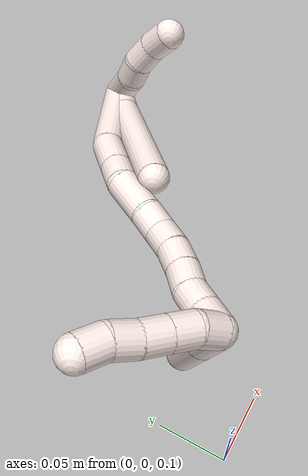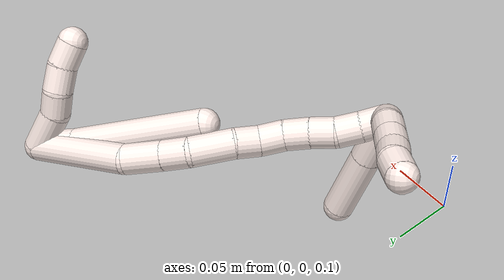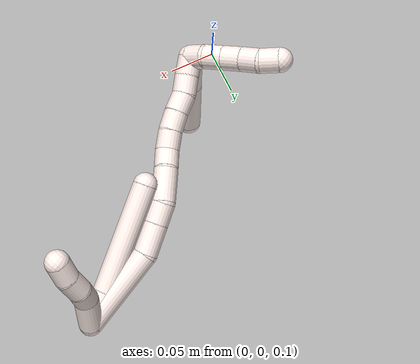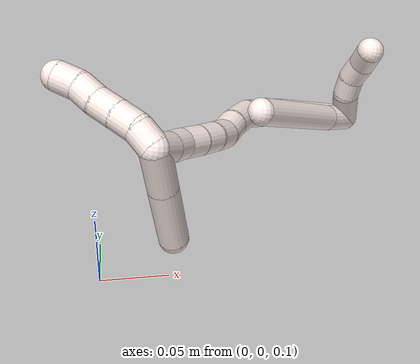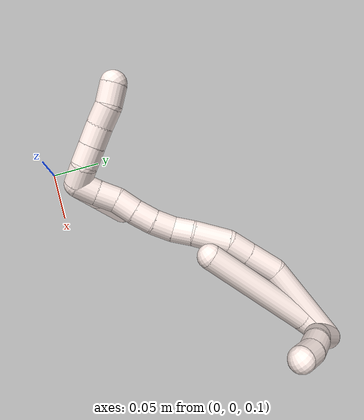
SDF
<sdf version="1.7">
 <world name="default">
  <model name="11">
   <static>0</static>
   <link name="11">
    <collision name="collision-cylinder-e_1_2_8">
     <pose>0.002844 -0.003409 -0.01672 2.94044 0.165153 1.37381</pose>
     <geometry><cylinder><radius>0.0125</radius><length>0.034599</length></cylinder></geometry>
     <surface>
      <friction><ode><mu>1.16</mu><mu2>1.16</mu2><slip1>0</slip1><slip2>0</slip2></ode></friction>
      <contact><ode><kp>1e+06</kp><kd>1</kd><max_vel>0</max_vel><min_depth>0.001</min_depth></ode></contact>
     </surface>
    </collision>
    <visual name="visual-cylinder-e_1_2_8">
     <pose>0.002844 -0.003409 -0.01672 2.94044 0.165153 1.37381</pose>
     <geometry><cylinder><radius>0.0125</radius><length>0.034599</length></cylinder></geometry>
     <material><ambient>1 0.933333 0.909804 1</ambient></material>
    </visual>
    <collision name="collision-cylinder-e_2_8_6">
     <pose>0.013432 -0.022802 -0.088339 2.85829 0.134613 0.883128</pose>
     <geometry><cylinder><radius>0.0125</radius><length>0.115401</length></cylinder></geometry>
     <surface>
      <friction><ode><mu>1.16</mu><mu2>1.16</mu2><slip1>0</slip1><slip2>0</slip2></ode></friction>
      <contact><ode><kp>1e+06</kp><kd>1</kd><max_vel>0</max_vel><min_depth>0.001</min_depth></ode></contact>
     </surface>
    </collision>
    <visual name="visual-cylinder-e_2_8_6">
     <pose>0.013432 -0.022802 -0.088339 2.85829 0.134613 0.883128</pose>
     <geometry><cylinder><radius>0.0125</radius><length>0.115401</length></cylinder></geometry>
     <material><ambient>1 0.933333 0.909804 1</ambient></material>
    </visual>
    <collision name="collision-cylinder-e_1_2_9">
     <pose>-0.00537 -0.0146 -0.010033 2.17287 -0.294315 -0.549196</pose>
     <geometry><cylinder><radius>0.0125</radius><length>0.037021</length></cylinder></geometry>
     <surface>
      <friction><ode><mu>1.16</mu><mu2>1.16</mu2><slip1>0</slip1><slip2>0</slip2></ode></friction>
      <contact><ode><kp>1e+06</kp><kd>1</kd><max_vel>0</max_vel><min_depth>0.001</min_depth></ode></contact>
     </surface>
    </collision>
    <visual name="visual-cylinder-e_1_2_9">
     <pose>-0.00537 -0.0146 -0.010033 2.17287 -0.294315 -0.549196</pose>
     <geometry><cylinder><radius>0.0125</radius><length>0.037021</length></cylinder></geometry>
     <material><ambient>1 0.933333 0.909804 1</ambient></material>
    </visual>
    <collision name="collision-cylinder-e_2_9_10">
     <pose>-0.014894 -0.038023 -0.02275 1.86616 -0.423246 -0.564386</pose>
     <geometry><cylinder><radius>0.0125</radius><length>0.020231</length></cylinder></geometry>
     <surface>
      <friction><ode><mu>1.16</mu><mu2>1.16</mu2><slip1>0</slip1><slip2>0</slip2></ode></friction>
      <contact><ode><kp>1e+06</kp><kd>1</kd><max_vel>0</max_vel><min_depth>0.001</min_depth></ode></contact>
     </surface>
    </collision>
    <visual name="visual-cylinder-e_2_9_10">
     <pose>-0.014894 -0.038023 -0.02275 1.86616 -0.423246 -0.564386</pose>
     <geometry><cylinder><radius>0.0125</radius><length>0.020231</length></cylinder></geometry>
     <material><ambient>1 0.933333 0.909804 1</ambient></material>
    </visual>
    <collision name="collision-cylinder-e_3_10_11">
     <pose>-0.020852 -0.057314 -0.02731 1.74805 -0.168008 -0.200577</pose>
     <geometry><cylinder><radius>0.0125</radius><length>0.021574</length></cylinder></geometry>
     <surface>
      <friction><ode><mu>1.16</mu><mu2>1.16</mu2><slip1>0</slip1><slip2>0</slip2></ode></friction>
      <contact><ode><kp>1e+06</kp><kd>1</kd><max_vel>0</max_vel><min_depth>0.001</min_depth></ode></contact>
     </surface>
    </collision>
    <visual name="visual-cylinder-e_3_10_11">
     <pose>-0.020852 -0.057314 -0.02731 1.74805 -0.168008 -0.200577</pose>
     <geometry><cylinder><radius>0.0125</radius><length>0.021574</length></cylinder></geometry>
     <material><ambient>1 0.933333 0.909804 1</ambient></material>
    </visual>
    <collision name="collision-cylinder-e_4_11_5">
     <pose>-0.023312 -0.077623 -0.033037 1.94392 -0.061989 -0.090803</pose>
     <geometry><cylinder><radius>0.0125</radius><length>0.021175</length></cylinder></geometry>
     <surface>
      <friction><ode><mu>1.16</mu><mu2>1.16</mu2><slip1>0</slip1><slip2>0</slip2></ode></friction>
      <contact><ode><kp>1e+06</kp><kd>1</kd><max_vel>0</max_vel><min_depth>0.001</min_depth></ode></contact>
     </surface>
    </collision>
    <visual name="visual-cylinder-e_4_11_5">
     <pose>-0.023312 -0.077623 -0.033037 1.94392 -0.061989 -0.090803</pose>
     <geometry><cylinder><radius>0.0125</radius><length>0.021175</length></cylinder></geometry>
     <material><ambient>1 0.933333 0.909804 1</ambient></material>
    </visual>
    <collision name="collision-cylinder-e_1_2_12">
     <pose>-0.000251 -0.00055 -0.044167 3.12914 -0.005676 -0.855438</pose>
     <geometry><cylinder><radius>0.0125</radius><length>0.088342</length></cylinder></geometry>
     <surface>
      <friction><ode><mu>1.16</mu><mu2>1.16</mu2><slip1>0</slip1><slip2>0</slip2></ode></friction>
      <contact><ode><kp>1e+06</kp><kd>1</kd><max_vel>0</max_vel><min_depth>0.001</min_depth></ode></contact>
     </surface>
    </collision>
    <visual name="visual-cylinder-e_1_2_12">
     <pose>-0.000251 -0.00055 -0.044167 3.12914 -0.005676 -0.855438</pose>
     <geometry><cylinder><radius>0.0125</radius><length>0.088342</length></cylinder></geometry>
     <material><ambient>1 0.933333 0.909804 1</ambient></material>
    </visual>
    <collision name="collision-cylinder-e_2_12_13">
     <pose>0.003213 -0.005025 -0.103614 2.89015 0.231198 1.48614</pose>
     <geometry><cylinder><radius>0.0125</radius><length>0.032416</length></cylinder></geometry>
     <surface>
      <friction><ode><mu>1.16</mu><mu2>1.16</mu2><slip1>0</slip1><slip2>0</slip2></ode></friction>
      <contact><ode><kp>1e+06</kp><kd>1</kd><max_vel>0</max_vel><min_depth>0.001</min_depth></ode></contact>
     </surface>
    </collision>
    <visual name="visual-cylinder-e_2_12_13">
     <pose>0.003213 -0.005025 -0.103614 2.89015 0.231198 1.48614</pose>
     <geometry><cylinder><radius>0.0125</radius><length>0.032416</length></cylinder></geometry>
     <material><ambient>1 0.933333 0.909804 1</ambient></material>
    </visual>
    <collision name="collision-cylinder-e_3_13_14">
     <pose>0.009114 -0.01195 -0.129473 2.86523 0.196369 1.23255</pose>
     <geometry><cylinder><radius>0.0125</radius><length>0.02242</length></cylinder></geometry>
     <surface>
      <friction><ode><mu>1.16</mu><mu2>1.16</mu2><slip1>0</slip1><slip2>0</slip2></ode></friction>
      <contact><ode><kp>1e+06</kp><kd>1</kd><max_vel>0</max_vel><min_depth>0.001</min_depth></ode></contact>
     </surface>
    </collision>
    <visual name="visual-cylinder-e_3_13_14">
     <pose>0.009114 -0.01195 -0.129473 2.86523 0.196369 1.23255</pose>
     <geometry><cylinder><radius>0.0125</radius><length>0.02242</length></cylinder></geometry>
     <material><ambient>1 0.933333 0.909804 1</ambient></material>
    </visual>
    <collision name="collision-cylinder-e_4_14_15">
     <pose>0.019887 -0.020971 -0.154447 2.7455 0.50303 1.81553</pose>
     <geometry><cylinder><radius>0.0125</radius><length>0.035622</length></cylinder></geometry>
     <surface>
      <friction><ode><mu>1.16</mu><mu2>1.16</mu2><slip1>0</slip1><slip2>0</slip2></ode></friction>
      <contact><ode><kp>1e+06</kp><kd>1</kd><max_vel>0</max_vel><min_depth>0.001</min_depth></ode></contact>
     </surface>
    </collision>
    <visual name="visual-cylinder-e_4_14_15">
     <pose>0.019887 -0.020971 -0.154447 2.7455 0.50303 1.81553</pose>
     <geometry><cylinder><radius>0.0125</radius><length>0.035622</length></cylinder></geometry>
     <material><ambient>1 0.933333 0.909804 1</ambient></material>
    </visual>
    <collision name="collision-cylinder-e_5_15_16">
     <pose>0.034616 -0.029448 -0.176355 2.82549 0.660609 2.27133</pose>
     <geometry><cylinder><radius>0.0125</radius><length>0.02002</length></cylinder></geometry>
     <surface>
      <friction><ode><mu>1.16</mu><mu2>1.16</mu2><slip1>0</slip1><slip2>0</slip2></ode></friction>
      <contact><ode><kp>1e+06</kp><kd>1</kd><max_vel>0</max_vel><min_depth>0.001</min_depth></ode></contact>
     </surface>
    </collision>
    <visual name="visual-cylinder-e_5_15_16">
     <pose>0.034616 -0.029448 -0.176355 2.82549 0.660609 2.27133</pose>
     <geometry><cylinder><radius>0.0125</radius><length>0.02002</length></cylinder></geometry>
     <material><ambient>1 0.933333 0.909804 1</ambient></material>
    </visual>
    <collision name="collision-cylinder-e_6_16_17">
     <pose>0.044231 -0.035678 -0.192861 2.74438 0.342135 1.41866</pose>
     <geometry><cylinder><radius>0.0125</radius><length>0.020705</length></cylinder></geometry>
     <surface>
      <friction><ode><mu>1.16</mu><mu2>1.16</mu2><slip1>0</slip1><slip2>0</slip2></ode></friction>
      <contact><ode><kp>1e+06</kp><kd>1</kd><max_vel>0</max_vel><min_depth>0.001</min_depth></ode></contact>
     </surface>
    </collision>
    <visual name="visual-cylinder-e_6_16_17">
     <pose>0.044231 -0.035678 -0.192861 2.74438 0.342135 1.41866</pose>
     <geometry><cylinder><radius>0.0125</radius><length>0.020705</length></cylinder></geometry>
     <material><ambient>1 0.933333 0.909804 1</ambient></material>
    </visual>
    <collision name="collision-cylinder-e_7_17_18">
     <pose>0.050685 -0.041835 -0.211307 2.89456 0.296787 1.7555</pose>
     <geometry><cylinder><radius>0.0125</radius><length>0.02039</length></cylinder></geometry>
     <surface>
      <friction><ode><mu>1.16</mu><mu2>1.16</mu2><slip1>0</slip1><slip2>0</slip2></ode></friction>
      <contact><ode><kp>1e+06</kp><kd>1</kd><max_vel>0</max_vel><min_depth>0.001</min_depth></ode></contact>
     </surface>
    </collision>
    <visual name="visual-cylinder-e_7_17_18">
     <pose>0.050685 -0.041835 -0.211307 2.89456 0.296787 1.7555</pose>
     <geometry><cylinder><radius>0.0125</radius><length>0.02039</length></cylinder></geometry>
     <material><ambient>1 0.933333 0.909804 1</ambient></material>
    </visual>
    <collision name="collision-cylinder-e_8_18_19">
     <pose>0.056126 -0.045807 -0.23034 2.97727 0.248074 1.97419</pose>
     <geometry><cylinder><radius>0.0125</radius><length>0.020035</length></cylinder></geometry>
     <surface>
      <friction><ode><mu>1.16</mu><mu2>1.16</mu2><slip1>0</slip1><slip2>0</slip2></ode></friction>
      <contact><ode><kp>1e+06</kp><kd>1</kd><max_vel>0</max_vel><min_depth>0.001</min_depth></ode></contact>
     </surface>
    </collision>
    <visual name="visual-cylinder-e_8_18_19">
     <pose>0.056126 -0.045807 -0.23034 2.97727 0.248074 1.97419</pose>
     <geometry><cylinder><radius>0.0125</radius><length>0.020035</length></cylinder></geometry>
     <material><ambient>1 0.933333 0.909804 1</ambient></material>
    </visual>
    <collision name="collision-cylinder-e_9_19_20">
     <pose>0.062068 -0.051075 -0.248558 2.73889 0.355133 1.4424</pose>
     <geometry><cylinder><radius>0.0125</radius><length>0.020027</length></cylinder></geometry>
     <surface>
      <friction><ode><mu>1.16</mu><mu2>1.16</mu2><slip1>0</slip1><slip2>0</slip2></ode></friction>
      <contact><ode><kp>1e+06</kp><kd>1</kd><max_vel>0</max_vel><min_depth>0.001</min_depth></ode></contact>
     </surface>
    </collision>
    <visual name="visual-cylinder-e_9_19_20">
     <pose>0.062068 -0.051075 -0.248558 2.73889 0.355133 1.4424</pose>
     <geometry><cylinder><radius>0.0125</radius><length>0.020027</length></cylinder></geometry>
     <material><ambient>1 0.933333 0.909804 1</ambient></material>
    </visual>
    <collision name="collision-cylinder-e_10_20_1">
     <pose>0.067898 -0.058779 -0.266057 2.71534 0.236792 1.00516</pose>
     <geometry><cylinder><radius>0.0125</radius><length>0.020024</length></cylinder></geometry>
     <surface>
      <friction><ode><mu>1.16</mu><mu2>1.16</mu2><slip1>0</slip1><slip2>0</slip2></ode></friction>
      <contact><ode><kp>1e+06</kp><kd>1</kd><max_vel>0</max_vel><min_depth>0.001</min_depth></ode></contact>
     </surface>
    </collision>
    <visual name="visual-cylinder-e_10_20_1">
     <pose>0.067898 -0.058779 -0.266057 2.71534 0.236792 1.00516</pose>
     <geometry><cylinder><radius>0.0125</radius><length>0.020024</length></cylinder></geometry>
     <material><ambient>1 0.933333 0.909804 1</ambient></material>
    </visual>
    <collision name="collision-cylinder-e_1_1_21">
     <pose>0.079794 -0.04748 -0.264866 -0.990184 0.480271 -0.262898</pose>
     <geometry><cylinder><radius>0.0125</radius><length>0.041328</length></cylinder></geometry>
     <surface>
      <friction><ode><mu>1.16</mu><mu2>1.16</mu2><slip1>0</slip1><slip2>0</slip2></ode></friction>
      <contact><ode><kp>1e+06</kp><kd>1</kd><max_vel>0</max_vel><min_depth>0.001</min_depth></ode></contact>
     </surface>
    </collision>
    <visual name="visual-cylinder-e_1_1_21">
     <pose>0.079794 -0.04748 -0.264866 -0.990184 0.480271 -0.262898</pose>
     <geometry><cylinder><radius>0.0125</radius><length>0.041328</length></cylinder></geometry>
     <material><ambient>1 0.933333 0.909804 1</ambient></material>
    </visual>
    <collision name="collision-cylinder-e_2_21_4">
     <pose>0.102827 -0.010429 -0.240438 -0.986279 0.477637 -0.260211</pose>
     <geometry><cylinder><radius>0.0125</radius><length>0.058672</length></cylinder></geometry>
     <surface>
      <friction><ode><mu>1.16</mu><mu2>1.16</mu2><slip1>0</slip1><slip2>0</slip2></ode></friction>
      <contact><ode><kp>1e+06</kp><kd>1</kd><max_vel>0</max_vel><min_depth>0.001</min_depth></ode></contact>
     </surface>
    </collision>
    <visual name="visual-cylinder-e_2_21_4">
     <pose>0.102827 -0.010429 -0.240438 -0.986279 0.477637 -0.260211</pose>
     <geometry><cylinder><radius>0.0125</radius><length>0.058672</length></cylinder></geometry>
     <material><ambient>1 0.933333 0.909804 1</ambient></material>
    </visual>
    <collision name="collision-cylinder-e_1_1_22">
     <pose>0.06137 -0.060919 -0.279119 -2.72007 -1.09238 2.46479</pose>
     <geometry><cylinder><radius>0.0125</radius><length>0.02</length></cylinder></geometry>
     <surface>
      <friction><ode><mu>1.16</mu><mu2>1.16</mu2><slip1>0</slip1><slip2>0</slip2></ode></friction>
      <contact><ode><kp>1e+06</kp><kd>1</kd><max_vel>0</max_vel><min_depth>0.001</min_depth></ode></contact>
     </surface>
    </collision>
    <visual name="visual-cylinder-e_1_1_22">
     <pose>0.06137 -0.060919 -0.279119 -2.72007 -1.09238 2.46479</pose>
     <geometry><cylinder><radius>0.0125</radius><length>0.02</length></cylinder></geometry>
     <material><ambient>1 0.933333 0.909804 1</ambient></material>
    </visual>
    <collision name="collision-cylinder-e_2_22_23">
     <pose>0.044982 -0.054402 -0.288024 -2.36373 -0.8497 1.66952</pose>
     <geometry><cylinder><radius>0.0125</radius><length>0.02</length></cylinder></geometry>
     <surface>
      <friction><ode><mu>1.16</mu><mu2>1.16</mu2><slip1>0</slip1><slip2>0</slip2></ode></friction>
      <contact><ode><kp>1e+06</kp><kd>1</kd><max_vel>0</max_vel><min_depth>0.001</min_depth></ode></contact>
     </surface>
    </collision>
    <visual name="visual-cylinder-e_2_22_23">
     <pose>0.044982 -0.054402 -0.288024 -2.36373 -0.8497 1.66952</pose>
     <geometry><cylinder><radius>0.0125</radius><length>0.02</length></cylinder></geometry>
     <material><ambient>1 0.933333 0.909804 1</ambient></material>
    </visual>
    <collision name="collision-cylinder-e_3_23_24">
     <pose>0.030008 -0.04512 -0.29749 -2.36821 -0.842454 1.66625</pose>
     <geometry><cylinder><radius>0.0125</radius><length>0.02</length></cylinder></geometry>
     <surface>
      <friction><ode><mu>1.16</mu><mu2>1.16</mu2><slip1>0</slip1><slip2>0</slip2></ode></friction>
      <contact><ode><kp>1e+06</kp><kd>1</kd><max_vel>0</max_vel><min_depth>0.001</min_depth></ode></contact>
     </surface>
    </collision>
    <visual name="visual-cylinder-e_3_23_24">
     <pose>0.030008 -0.04512 -0.29749 -2.36821 -0.842454 1.66625</pose>
     <geometry><cylinder><radius>0.0125</radius><length>0.02</length></cylinder></geometry>
     <material><ambient>1 0.933333 0.909804 1</ambient></material>
    </visual>
    <collision name="collision-cylinder-e_4_24_25">
     <pose>0.014311 -0.036566 -0.306371 -2.38299 -0.967445 1.84345</pose>
     <geometry><cylinder><radius>0.0125</radius><length>0.02</length></cylinder></geometry>
     <surface>
      <friction><ode><mu>1.16</mu><mu2>1.16</mu2><slip1>0</slip1><slip2>0</slip2></ode></friction>
      <contact><ode><kp>1e+06</kp><kd>1</kd><max_vel>0</max_vel><min_depth>0.001</min_depth></ode></contact>
     </surface>
    </collision>
    <visual name="visual-cylinder-e_4_24_25">
     <pose>0.014311 -0.036566 -0.306371 -2.38299 -0.967445 1.84345</pose>
     <geometry><cylinder><radius>0.0125</radius><length>0.02</length></cylinder></geometry>
     <material><ambient>1 0.933333 0.909804 1</ambient></material>
    </visual>
    <collision name="collision-cylinder-e_5_25_3">
     <pose>-0.000186 -0.027773 -0.316561 -2.46355 -0.676776 1.56878</pose>
     <geometry><cylinder><radius>0.0125</radius><length>0.02</length></cylinder></geometry>
     <surface>
      <friction><ode><mu>1.16</mu><mu2>1.16</mu2><slip1>0</slip1><slip2>0</slip2></ode></friction>
      <contact><ode><kp>1e+06</kp><kd>1</kd><max_vel>0</max_vel><min_depth>0.001</min_depth></ode></contact>
     </surface>
    </collision>
    <visual name="visual-cylinder-e_5_25_3">
     <pose>-0.000186 -0.027773 -0.316561 -2.46355 -0.676776 1.56878</pose>
     <geometry><cylinder><radius>0.0125</radius><length>0.02</length></cylinder></geometry>
     <material><ambient>1 0.933333 0.909804 1</ambient></material>
    </visual>
    <collision name="collision-sphere-3">
     <pose>-0.006449 -0.022883 -0.322632 0 -0 0</pose>
     <geometry><sphere><radius>0.0125</radius></sphere></geometry>
     <surface>
      <friction><ode><mu>1.16</mu><mu2>1.16</mu2><slip1>0</slip1><slip2>0</slip2></ode></friction>
      <contact><ode><kp>1e+06</kp><kd>1</kd><max_vel>0</max_vel><min_depth>0.001</min_depth></ode></contact>
     </surface>
    </collision>
    <visual name="visual-sphere-3">
     <pose>-0.006449 -0.022883 -0.322632 0 -0 0</pose>
     <geometry><sphere><radius>0.0125</radius></sphere></geometry>
     <material><ambient>1 0.933333 0.909804 1</ambient></material>
    </visual>
    <collision name="collision-sphere-25">
     <pose>0.006077 -0.032663 -0.310489 0 -0 0</pose>
     <geometry><sphere><radius>0.0125</radius></sphere></geometry>
     <surface>
      <friction><ode><mu>1.16</mu><mu2>1.16</mu2><slip1>0</slip1><slip2>0</slip2></ode></friction>
      <contact><ode><kp>1e+06</kp><kd>1</kd><max_vel>0</max_vel><min_depth>0.001</min_depth></ode></contact>
     </surface>
    </collision>
    <visual name="visual-sphere-25">
     <pose>0.006077 -0.032663 -0.310489 0 -0 0</pose>
     <geometry><sphere><radius>0.0125</radius></sphere></geometry>
     <material><ambient>1 0.933333 0.909804 1</ambient></material>
    </visual>
    <collision name="collision-sphere-24">
     <pose>0.022545 -0.04047 -0.302253 0 -0 0</pose>
     <geometry><sphere><radius>0.0125</radius></sphere></geometry>
     <surface>
      <friction><ode><mu>1.16</mu><mu2>1.16</mu2><slip1>0</slip1><slip2>0</slip2></ode></friction>
      <contact><ode><kp>1e+06</kp><kd>1</kd><max_vel>0</max_vel><min_depth>0.001</min_depth></ode></contact>
     </surface>
    </collision>
    <visual name="visual-sphere-24">
     <pose>0.022545 -0.04047 -0.302253 0 -0 0</pose>
     <geometry><sphere><radius>0.0125</radius></sphere></geometry>
     <material><ambient>1 0.933333 0.909804 1</ambient></material>
    </visual>
    <collision name="collision-sphere-23">
     <pose>0.037471 -0.049769 -0.292727 0 -0 0</pose>
     <geometry><sphere><radius>0.0125</radius></sphere></geometry>
     <surface>
      <friction><ode><mu>1.16</mu><mu2>1.16</mu2><slip1>0</slip1><slip2>0</slip2></ode></friction>
      <contact><ode><kp>1e+06</kp><kd>1</kd><max_vel>0</max_vel><min_depth>0.001</min_depth></ode></contact>
     </surface>
    </collision>
    <visual name="visual-sphere-23">
     <pose>0.037471 -0.049769 -0.292727 0 -0 0</pose>
     <geometry><sphere><radius>0.0125</radius></sphere></geometry>
     <material><ambient>1 0.933333 0.909804 1</ambient></material>
    </visual>
    <collision name="collision-sphere-22">
     <pose>0.052493 -0.059036 -0.28332 0 -0 0</pose>
     <geometry><sphere><radius>0.0125</radius></sphere></geometry>
     <surface>
      <friction><ode><mu>1.16</mu><mu2>1.16</mu2><slip1>0</slip1><slip2>0</slip2></ode></friction>
      <contact><ode><kp>1e+06</kp><kd>1</kd><max_vel>0</max_vel><min_depth>0.001</min_depth></ode></contact>
     </surface>
    </collision>
    <visual name="visual-sphere-22">
     <pose>0.052493 -0.059036 -0.28332 0 -0 0</pose>
     <geometry><sphere><radius>0.0125</radius></sphere></geometry>
     <material><ambient>1 0.933333 0.909804 1</ambient></material>
    </visual>
    <collision name="collision-sphere-4">
     <pose>0.116312 0.011298 -0.226062 0 -0 0</pose>
     <geometry><sphere><radius>0.0125</radius></sphere></geometry>
     <surface>
      <friction><ode><mu>1.16</mu><mu2>1.16</mu2><slip1>0</slip1><slip2>0</slip2></ode></friction>
      <contact><ode><kp>1e+06</kp><kd>1</kd><max_vel>0</max_vel><min_depth>0.001</min_depth></ode></contact>
     </surface>
    </collision>
    <visual name="visual-sphere-4">
     <pose>0.116312 0.011298 -0.226062 0 -0 0</pose>
     <geometry><sphere><radius>0.0125</radius></sphere></geometry>
     <material><ambient>1 0.933333 0.909804 1</ambient></material>
    </visual>
    <collision name="collision-sphere-21">
     <pose>0.089341 -0.032157 -0.254814 0 -0 0</pose>
     <geometry><sphere><radius>0.0125</radius></sphere></geometry>
     <surface>
      <friction><ode><mu>1.16</mu><mu2>1.16</mu2><slip1>0</slip1><slip2>0</slip2></ode></friction>
      <contact><ode><kp>1e+06</kp><kd>1</kd><max_vel>0</max_vel><min_depth>0.001</min_depth></ode></contact>
     </surface>
    </collision>
    <visual name="visual-sphere-21">
     <pose>0.089341 -0.032157 -0.254814 0 -0 0</pose>
     <geometry><sphere><radius>0.0125</radius></sphere></geometry>
     <material><ambient>1 0.933333 0.909804 1</ambient></material>
    </visual>
    <collision name="collision-sphere-1">
     <pose>0.070247 -0.062803 -0.274919 0 -0 0</pose>
     <geometry><sphere><radius>0.0125</radius></sphere></geometry>
     <surface>
      <friction><ode><mu>1.16</mu><mu2>1.16</mu2><slip1>0</slip1><slip2>0</slip2></ode></friction>
      <contact><ode><kp>1e+06</kp><kd>1</kd><max_vel>0</max_vel><min_depth>0.001</min_depth></ode></contact>
     </surface>
    </collision>
    <visual name="visual-sphere-1">
     <pose>0.070247 -0.062803 -0.274919 0 -0 0</pose>
     <geometry><sphere><radius>0.0125</radius></sphere></geometry>
     <material><ambient>1 0.933333 0.909804 1</ambient></material>
    </visual>
    <collision name="collision-sphere-11">
     <pose>-0.022656 -0.067783 -0.029185 0 -0 0</pose>
     <geometry><sphere><radius>0.0125</radius></sphere></geometry>
     <surface>
      <friction><ode><mu>1.16</mu><mu2>1.16</mu2><slip1>0</slip1><slip2>0</slip2></ode></friction>
      <contact><ode><kp>1e+06</kp><kd>1</kd><max_vel>0</max_vel><min_depth>0.001</min_depth></ode></contact>
     </surface>
    </collision>
    <visual name="visual-sphere-11">
     <pose>-0.022656 -0.067783 -0.029185 0 -0 0</pose>
     <geometry><sphere><radius>0.0125</radius></sphere></geometry>
     <material><ambient>1 0.933333 0.909804 1</ambient></material>
    </visual>
    <collision name="collision-sphere-10">
     <pose>-0.019048 -0.046846 -0.025434 0 -0 0</pose>
     <geometry><sphere><radius>0.0125</radius></sphere></geometry>
     <surface>
      <friction><ode><mu>1.16</mu><mu2>1.16</mu2><slip1>0</slip1><slip2>0</slip2></ode></friction>
      <contact><ode><kp>1e+06</kp><kd>1</kd><max_vel>0</max_vel><min_depth>0.001</min_depth></ode></contact>
     </surface>
    </collision>
    <visual name="visual-sphere-10">
     <pose>-0.019048 -0.046846 -0.025434 0 -0 0</pose>
     <geometry><sphere><radius>0.0125</radius></sphere></geometry>
     <material><ambient>1 0.933333 0.909804 1</ambient></material>
    </visual>
    <collision name="collision-sphere-6">
     <pose>0.021176 -0.038784 -0.143239 0 -0 0</pose>
     <geometry><sphere><radius>0.0125</radius></sphere></geometry>
     <surface>
      <friction><ode><mu>1.16</mu><mu2>1.16</mu2><slip1>0</slip1><slip2>0</slip2></ode></friction>
      <contact><ode><kp>1e+06</kp><kd>1</kd><max_vel>0</max_vel><min_depth>0.001</min_depth></ode></contact>
     </surface>
    </collision>
    <visual name="visual-sphere-6">
     <pose>0.021176 -0.038784 -0.143239 0 -0 0</pose>
     <geometry><sphere><radius>0.0125</radius></sphere></geometry>
     <material><ambient>1 0.933333 0.909804 1</ambient></material>
    </visual>
    <collision name="collision-sphere-9">
     <pose>-0.010739 -0.029199 -0.020065 0 -0 0</pose>
     <geometry><sphere><radius>0.0125</radius></sphere></geometry>
     <surface>
      <friction><ode><mu>1.16</mu><mu2>1.16</mu2><slip1>0</slip1><slip2>0</slip2></ode></friction>
      <contact><ode><kp>1e+06</kp><kd>1</kd><max_vel>0</max_vel><min_depth>0.001</min_depth></ode></contact>
     </surface>
    </collision>
    <visual name="visual-sphere-9">
     <pose>-0.010739 -0.029199 -0.020065 0 -0 0</pose>
     <geometry><sphere><radius>0.0125</radius></sphere></geometry>
     <material><ambient>1 0.933333 0.909804 1</ambient></material>
    </visual>
    <collision name="collision-sphere-2">
     <geometry><sphere><radius>0.0125</radius></sphere></geometry>
     <surface>
      <friction><ode><mu>1.16</mu><mu2>1.16</mu2><slip1>0</slip1><slip2>0</slip2></ode></friction>
      <contact><ode><kp>1e+06</kp><kd>1</kd><max_vel>0</max_vel><min_depth>0.001</min_depth></ode></contact>
     </surface>
    </collision>
    <visual name="visual-sphere-2">
     <geometry><sphere><radius>0.0125</radius></sphere></geometry>
     <material><ambient>1 0.933333 0.909804 1</ambient></material>
    </visual>
    <collision name="collision-sphere-19">
     <pose>0.058586 -0.047396 -0.23992 0 -0 0</pose>
     <geometry><sphere><radius>0.0125</radius></sphere></geometry>
     <surface>
      <friction><ode><mu>1.16</mu><mu2>1.16</mu2><slip1>0</slip1><slip2>0</slip2></ode></friction>
      <contact><ode><kp>1e+06</kp><kd>1</kd><max_vel>0</max_vel><min_depth>0.001</min_depth></ode></contact>
     </surface>
    </collision>
    <visual name="visual-sphere-19">
     <pose>0.058586 -0.047396 -0.23992 0 -0 0</pose>
     <geometry><sphere><radius>0.0125</radius></sphere></geometry>
     <material><ambient>1 0.933333 0.909804 1</ambient></material>
    </visual>
    <collision name="collision-sphere-8">
     <pose>0.005688 -0.006819 -0.03344 0 -0 0</pose>
     <geometry><sphere><radius>0.0125</radius></sphere></geometry>
     <surface>
      <friction><ode><mu>1.16</mu><mu2>1.16</mu2><slip1>0</slip1><slip2>0</slip2></ode></friction>
      <contact><ode><kp>1e+06</kp><kd>1</kd><max_vel>0</max_vel><min_depth>0.001</min_depth></ode></contact>
     </surface>
    </collision>
    <visual name="visual-sphere-8">
     <pose>0.005688 -0.006819 -0.03344 0 -0 0</pose>
     <geometry><sphere><radius>0.0125</radius></sphere></geometry>
     <material><ambient>1 0.933333 0.909804 1</ambient></material>
    </visual>
    <collision name="collision-sphere-5">
     <pose>-0.023968 -0.087463 -0.036889 0 -0 0</pose>
     <geometry><sphere><radius>0.0125</radius></sphere></geometry>
     <surface>
      <friction><ode><mu>1.16</mu><mu2>1.16</mu2><slip1>0</slip1><slip2>0</slip2></ode></friction>
      <contact><ode><kp>1e+06</kp><kd>1</kd><max_vel>0</max_vel><min_depth>0.001</min_depth></ode></contact>
     </surface>
    </collision>
    <visual name="visual-sphere-5">
     <pose>-0.023968 -0.087463 -0.036889 0 -0 0</pose>
     <geometry><sphere><radius>0.0125</radius></sphere></geometry>
     <material><ambient>1 0.933333 0.909804 1</ambient></material>
    </visual>
    <collision name="collision-sphere-12">
     <pose>-0.000501 -0.0011 -0.088334 0 -0 0</pose>
     <geometry><sphere><radius>0.0125</radius></sphere></geometry>
     <surface>
      <friction><ode><mu>1.16</mu><mu2>1.16</mu2><slip1>0</slip1><slip2>0</slip2></ode></friction>
      <contact><ode><kp>1e+06</kp><kd>1</kd><max_vel>0</max_vel><min_depth>0.001</min_depth></ode></contact>
     </surface>
    </collision>
    <visual name="visual-sphere-12">
     <pose>-0.000501 -0.0011 -0.088334 0 -0 0</pose>
     <geometry><sphere><radius>0.0125</radius></sphere></geometry>
     <material><ambient>1 0.933333 0.909804 1</ambient></material>
    </visual>
    <collision name="collision-sphere-13">
     <pose>0.006926 -0.00895 -0.118895 0 -0 0</pose>
     <geometry><sphere><radius>0.0125</radius></sphere></geometry>
     <surface>
      <friction><ode><mu>1.16</mu><mu2>1.16</mu2><slip1>0</slip1><slip2>0</slip2></ode></friction>
      <contact><ode><kp>1e+06</kp><kd>1</kd><max_vel>0</max_vel><min_depth>0.001</min_depth></ode></contact>
     </surface>
    </collision>
    <visual name="visual-sphere-13">
     <pose>0.006926 -0.00895 -0.118895 0 -0 0</pose>
     <geometry><sphere><radius>0.0125</radius></sphere></geometry>
     <material><ambient>1 0.933333 0.909804 1</ambient></material>
    </visual>
    <collision name="collision-sphere-14">
     <pose>0.011301 -0.01495 -0.14005 0 -0 0</pose>
     <geometry><sphere><radius>0.0125</radius></sphere></geometry>
     <surface>
      <friction><ode><mu>1.16</mu><mu2>1.16</mu2><slip1>0</slip1><slip2>0</slip2></ode></friction>
      <contact><ode><kp>1e+06</kp><kd>1</kd><max_vel>0</max_vel><min_depth>0.001</min_depth></ode></contact>
     </surface>
    </collision>
    <visual name="visual-sphere-14">
     <pose>0.011301 -0.01495 -0.14005 0 -0 0</pose>
     <geometry><sphere><radius>0.0125</radius></sphere></geometry>
     <material><ambient>1 0.933333 0.909804 1</ambient></material>
    </visual>
    <collision name="collision-sphere-15">
     <pose>0.028474 -0.026991 -0.168843 0 -0 0</pose>
     <geometry><sphere><radius>0.0125</radius></sphere></geometry>
     <surface>
      <friction><ode><mu>1.16</mu><mu2>1.16</mu2><slip1>0</slip1><slip2>0</slip2></ode></friction>
      <contact><ode><kp>1e+06</kp><kd>1</kd><max_vel>0</max_vel><min_depth>0.001</min_depth></ode></contact>
     </surface>
    </collision>
    <visual name="visual-sphere-15">
     <pose>0.028474 -0.026991 -0.168843 0 -0 0</pose>
     <geometry><sphere><radius>0.0125</radius></sphere></geometry>
     <material><ambient>1 0.933333 0.909804 1</ambient></material>
    </visual>
    <collision name="collision-sphere-16">
     <pose>0.040758 -0.031905 -0.183868 0 -0 0</pose>
     <geometry><sphere><radius>0.0125</radius></sphere></geometry>
     <surface>
      <friction><ode><mu>1.16</mu><mu2>1.16</mu2><slip1>0</slip1><slip2>0</slip2></ode></friction>
      <contact><ode><kp>1e+06</kp><kd>1</kd><max_vel>0</max_vel><min_depth>0.001</min_depth></ode></contact>
     </surface>
    </collision>
    <visual name="visual-sphere-16">
     <pose>0.040758 -0.031905 -0.183868 0 -0 0</pose>
     <geometry><sphere><radius>0.0125</radius></sphere></geometry>
     <material><ambient>1 0.933333 0.909804 1</ambient></material>
    </visual>
    <collision name="collision-sphere-17">
     <pose>0.047704 -0.039451 -0.201854 0 -0 0</pose>
     <geometry><sphere><radius>0.0125</radius></sphere></geometry>
     <surface>
      <friction><ode><mu>1.16</mu><mu2>1.16</mu2><slip1>0</slip1><slip2>0</slip2></ode></friction>
      <contact><ode><kp>1e+06</kp><kd>1</kd><max_vel>0</max_vel><min_depth>0.001</min_depth></ode></contact>
     </surface>
    </collision>
    <visual name="visual-sphere-17">
     <pose>0.047704 -0.039451 -0.201854 0 -0 0</pose>
     <geometry><sphere><radius>0.0125</radius></sphere></geometry>
     <material><ambient>1 0.933333 0.909804 1</ambient></material>
    </visual>
    <collision name="collision-sphere-18">
     <pose>0.053667 -0.044219 -0.22076 0 -0 0</pose>
     <geometry><sphere><radius>0.0125</radius></sphere></geometry>
     <surface>
      <friction><ode><mu>1.16</mu><mu2>1.16</mu2><slip1>0</slip1><slip2>0</slip2></ode></friction>
      <contact><ode><kp>1e+06</kp><kd>1</kd><max_vel>0</max_vel><min_depth>0.001</min_depth></ode></contact>
     </surface>
    </collision>
    <visual name="visual-sphere-18">
     <pose>0.053667 -0.044219 -0.22076 0 -0 0</pose>
     <geometry><sphere><radius>0.0125</radius></sphere></geometry>
     <material><ambient>1 0.933333 0.909804 1</ambient></material>
    </visual>
    <collision name="collision-sphere-20">
     <pose>0.06555 -0.054755 -0.257195 0 -0 0</pose>
     <geometry><sphere><radius>0.0125</radius></sphere></geometry>
     <surface>
      <friction><ode><mu>1.16</mu><mu2>1.16</mu2><slip1>0</slip1><slip2>0</slip2></ode></friction>
      <contact><ode><kp>1e+06</kp><kd>1</kd><max_vel>0</max_vel><min_depth>0.001</min_depth></ode></contact>
     </surface>
    </collision>
    <visual name="visual-sphere-20">
     <pose>0.06555 -0.054755 -0.257195 0 -0 0</pose>
     <geometry><sphere><radius>0.0125</radius></sphere></geometry>
     <material><ambient>1 0.933333 0.909804 1</ambient></material>
    </visual>
    <inertial>
     <pose>0.026546 -0.027379 -0.146821 0 -0 0</pose>
     <mass>0.75</mass>
     <inertia><ixx>0.000229</ixx><ixy>0</ixy><ixz>0</ixz><iyy>-3e-05</iyy><iyz>0</iyz><izz>-3.4e-05</izz></inertia>
    </inertial>
   </link>
   <pose>0.248944 0.229069 0.118795 -1.95342 0.755536 -1.4151</pose>
  </model>
 </world>
</sdf>
